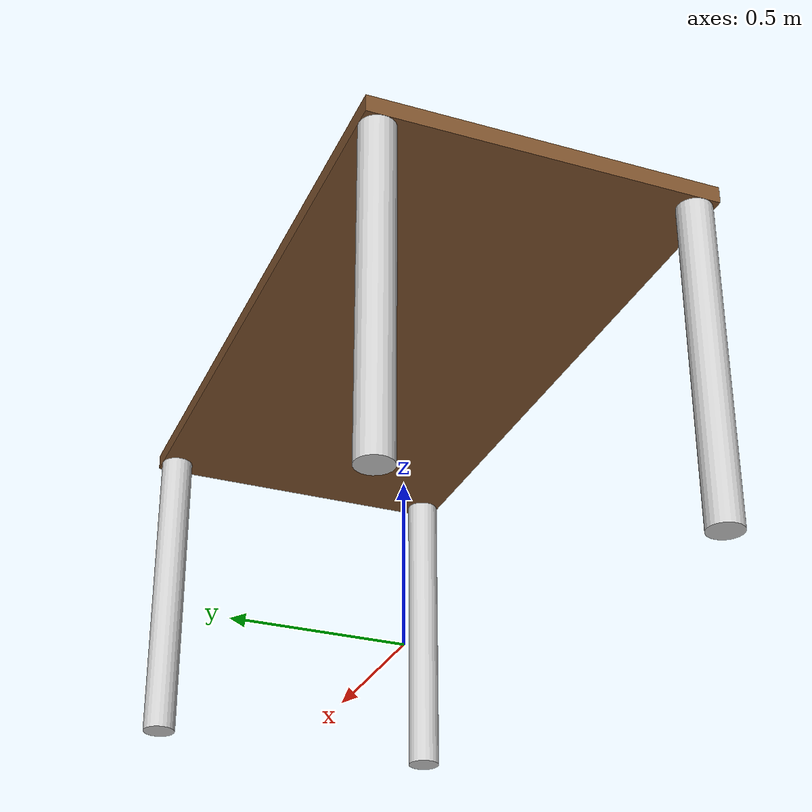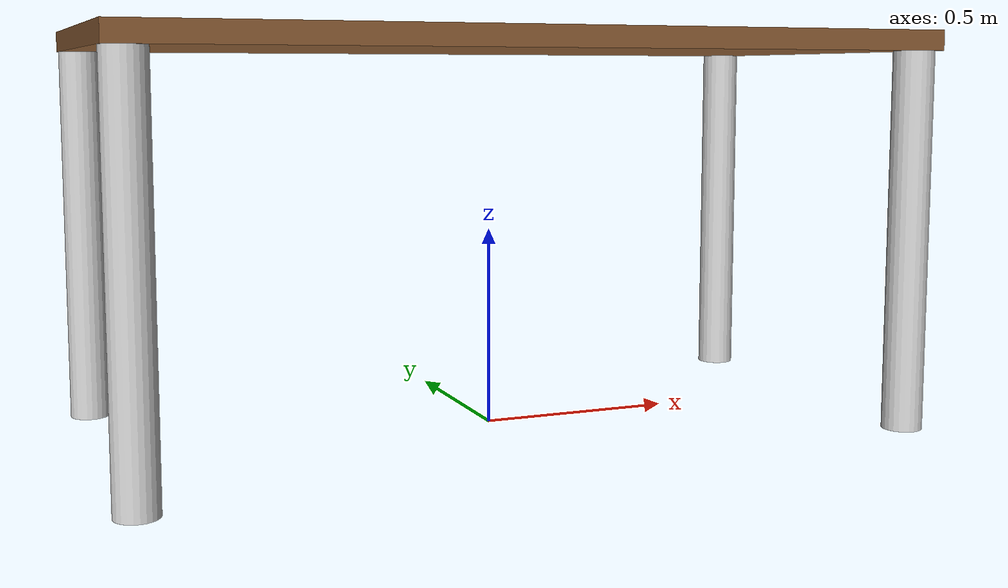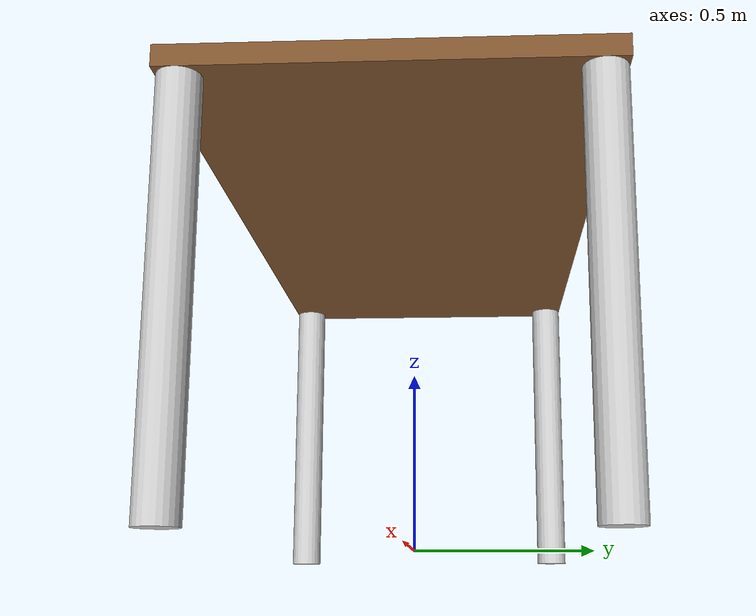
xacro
<?xml version="1.0" encoding="UTF-8"?>
<robot xmlns:xacro="http://wiki.ros.org/xacro" name="table">

  <!-- copy and paste the contents of "table_macro.xacro" here -->
  <xacro:include filename="materials.xacro" />
  <xacro:include filename="table_macro.xacro"/>

  <!-- create link fixed to the "world" -->
  <link name="world" />

  <!-- create the table -->
  <xacro:table prefix="table_" parent="world">
    <!-- position table in the world -->
    <origin xyz="0 0 0" rpy="0 0 0" />
  </xacro:table>

</robot>

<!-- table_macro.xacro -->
<robot xmlns:xacro="http://www.ros.org/wiki/xacro">

  <xacro:macro name="table" params="prefix parent *origin">

    <!-- Constants for robot dimensions -->
    <xacro:property name="table_length" value="2.0" /> <!-- Length of the table -->
    <xacro:property name="table_width" value="1.0" /> <!-- Width of the table -->
    <xacro:property name="table_height" value="1.0" /> <!-- Height of the table -->
    <xacro:property name="table_thickness" value="0.05" /> <!-- Thickness of the table top -->
    <xacro:property name="leg_radius" value="0.05" /> <!-- Radius of the table legs -->
    <xacro:property name="leg_length" value="${table_height - table_thickness}" /> <!-- Length of the table legs -->

    <joint name="${prefix}base_joint" type="fixed">
      <xacro:insert_block name="origin" />
      <parent link="${parent}" />
      <child link="${prefix}offset" />
    </joint>

    <link name="${prefix}offset">
    </link>

    <joint name="${prefix}table_joint" type="fixed">
      <origin xyz="0 0 ${table_height}" rpy="0 0 0" />
      <parent link="${prefix}offset" />
      <child link="${prefix}top" />
    </joint>

    <link name="${prefix}top">
      <visual>
        <origin xyz="0 0 ${-table_thickness/2}" rpy="0 0 0" />
        <geometry>
          <box size="${table_length} ${table_width} ${table_thickness}" />
        </geometry>
        <material name="brown" />
      </visual>
    </link>

    <link name="${prefix}leg1">
      <visual>
        <origin xyz="0 0 ${-leg_length/2}" rpy="0 0 0" />
        <geometry>
          <cylinder radius="${leg_radius}" length="${leg_length}" />
        </geometry>
        <material name="light_grey" />
      </visual>
    </link>

    <link name="${prefix}leg2">
      <visual>
        <origin xyz="0 0 ${-leg_length/2}" rpy="0 0 0" />
        <geometry>
          <cylinder radius="${leg_radius}" length="${leg_length}" />
        </geometry>
        <material name="light_grey" />
      </visual>
    </link>

    <link name="${prefix}leg3">
      <visual>
        <origin xyz="0 0 ${-leg_length/2}" rpy="0 0 0" />
        <geometry>
          <cylinder radius="${leg_radius}" length="${leg_length}" />
        </geometry>
        <material name="light_grey" />
      </visual>
    </link>

    <link name="${prefix}leg4">
      <visual>
        <origin xyz="0 0 ${-leg_length/2}" rpy="0 0 0" />
        <geometry>
          <cylinder radius="${leg_radius}" length="${leg_length}" />
        </geometry>
        <material name="light_grey" />
      </visual>
    </link>

    <joint name="${prefix}leg1_joint" type="fixed">
      <origin xyz="${table_length/2 - leg_radius} ${table_width/2 - leg_radius} ${-table_thickness}" rpy="0 0 0" />
      <parent link="${prefix}top" />
      <child link="${prefix}leg1" />
    </joint>

    <joint name="${prefix}leg2_joint" type="fixed">
      <origin xyz="${table_length/2 - leg_radius} ${-table_width/2 + leg_radius} ${-table_thickness}" rpy="0 0 0" />
      <parent link="${prefix}top" />
      <child link="${prefix}leg2" />
    </joint>

    <joint name="${prefix}leg3_joint" type="fixed">
      <origin xyz="${-table_length/2 + leg_radius} ${table_width/2 - leg_radius} ${-table_thickness}" rpy="0 0 0" />
      <parent link="${prefix}top" />
      <child link="${prefix}leg3" />
    </joint>

    <joint name="${prefix}leg4_joint" type="fixed">
      <origin xyz="${-table_length/2 + leg_radius} ${-table_width/2 + leg_radius} ${-table_thickness}" rpy="0 0 0" />
      <parent link="${prefix}top" />
      <child link="${prefix}leg4" />
    </joint>

  </xacro:macro>

</robot>
